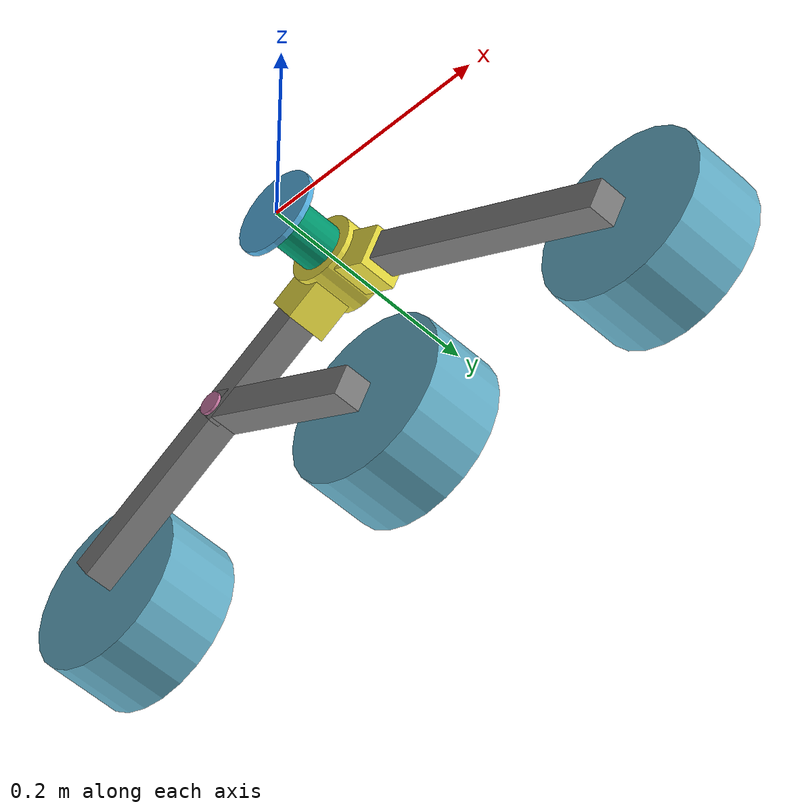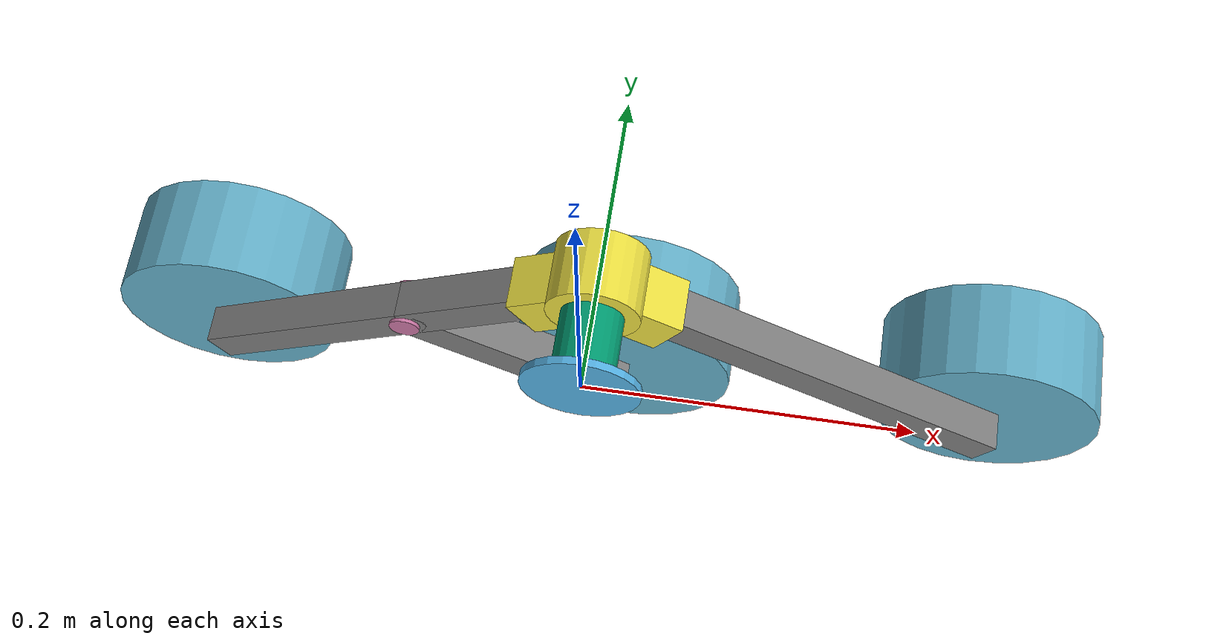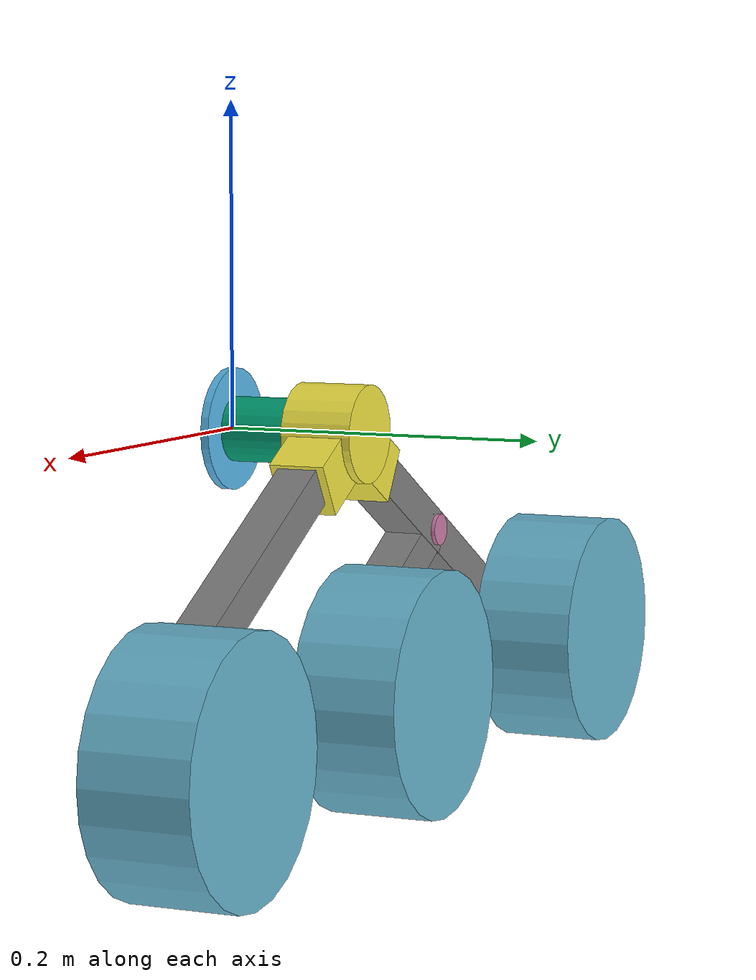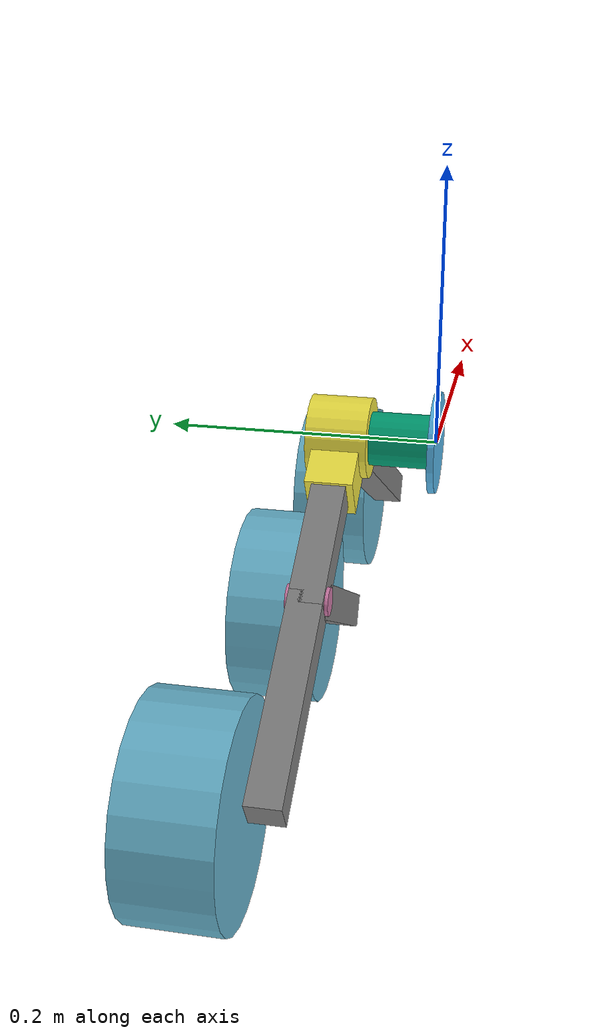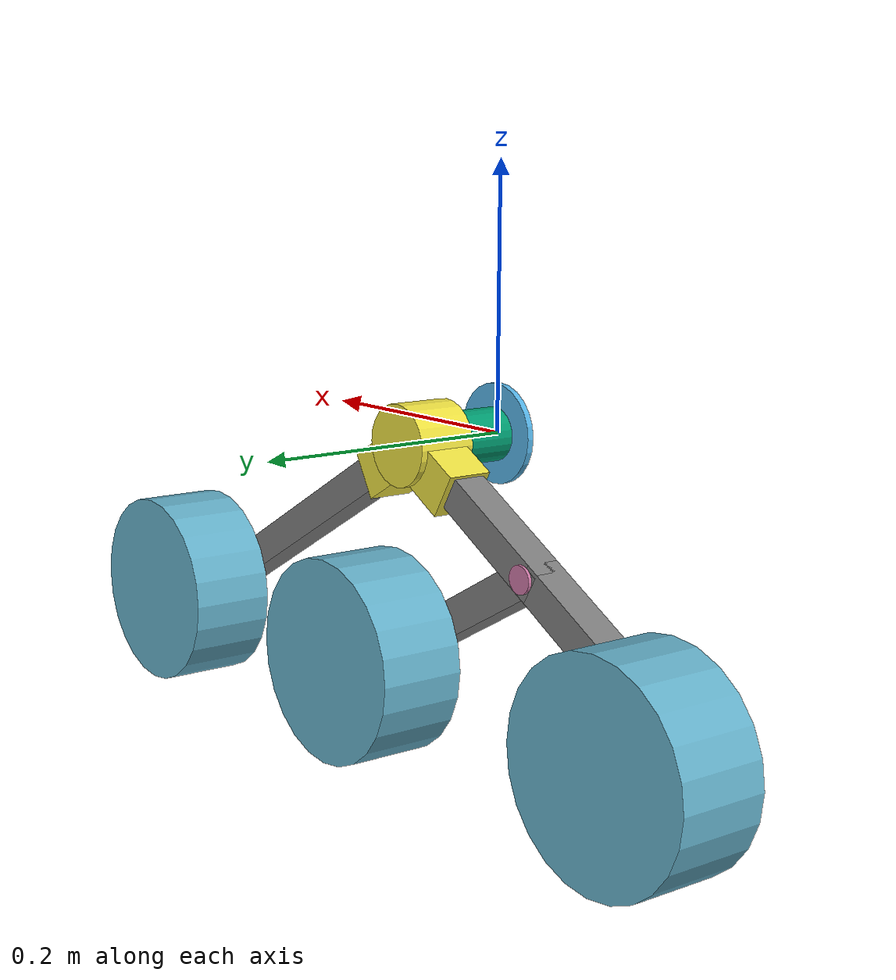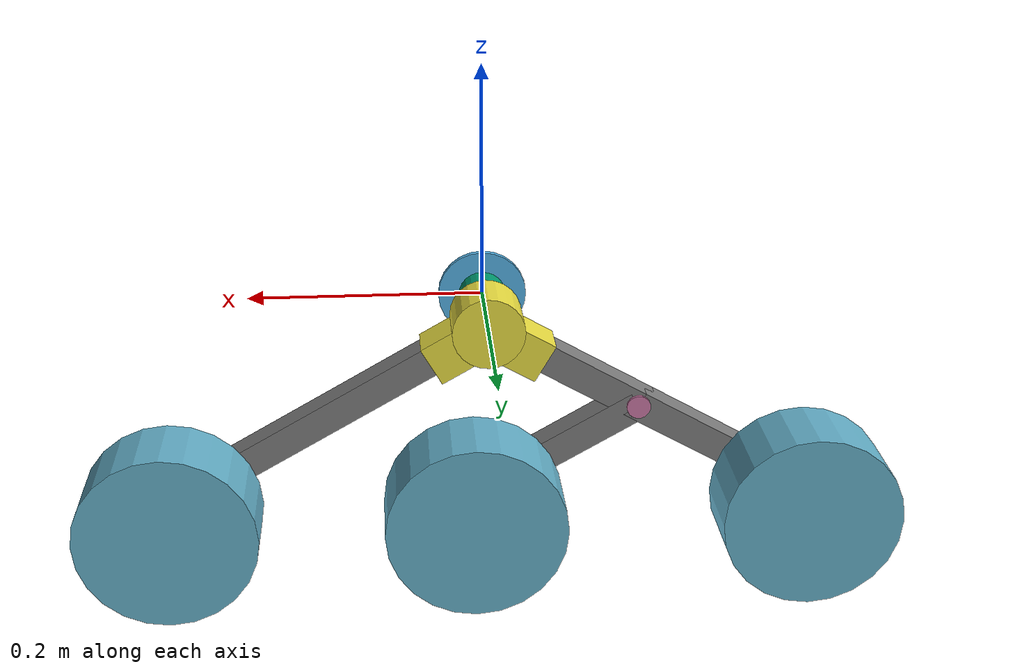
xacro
<?xml version="1.0"?>

<robot xmlns:xacro="http://www.ros.org/wiki/xacro" name="minesweeper_left">

  <link name="left_base_link"/>

  <xacro:property name="circular_plate_length" value="0.005"/>
  <xacro:property name="circular_plate_radius" value="0.0375"/>

  <link name = "circular_plate_link">
    <visual>
        <geometry>
            <cylinder length="${circular_plate_length}" radius="${circular_plate_radius}"/>
        </geometry>
        <origin xyz = "0 0 0" rpy="${pi/2} 0 0"/>
    </visual>
    <collision>
        <geometry>
            <cylinder length="${circular_plate_length}" radius="${circular_plate_radius}"/>
        </geometry>
        <origin xyz = "0 0 0" rpy="${pi/2} 0 0"/>
    </collision>
    <inertial>
      <origin xyz="0 0 0" rpy="${pi/2} 0 0"/> <!-- Position and orientation of the inertia frame relative to the link frame -->
      <mass value="0.01"/> <!-- Mass of the link in kilograms -->
      <inertia ixx="${1/12*0.01*(3*circular_plate_radius**2 + circular_plate_length**2)}" ixy="0" ixz="0" iyy="${1/12*0.01*(3*circular_plate_radius**2 + circular_plate_length**2)}" iyz="0" izz="${1/2*0.01*circular_plate_radius**2}"/> <!-- Inertia tensor components in kg*m^2 -->

    </inertial>
  </link>

  <joint name="circular_plate_joint" type="fixed">
    <parent link="left_base_link"/>
    <child link="circular_plate_link"/>
  </joint>

  <xacro:property name="bracket_length" value="0.045"/>
  <xacro:property name="bracket_radius" value="0.02"/>

  <link name="bracket_link">
    <visual>
        <geometry>
            <cylinder length = "${bracket_length}" radius="${bracket_radius}"/>
        </geometry>
        <origin xyz = "0 0 0" rpy="0 0 0"/>
    </visual>
    <collision>
        <geometry>
            <cylinder length = "${bracket_length}" radius="${bracket_radius}"/>
        </geometry>
        <origin xyz = "0 0 0" rpy="0 0 0"/>
    </collision>
    <inertial>
      <origin xyz="0 0 0" rpy="0 0 0"/> <!-- Position and orientation of the inertia frame relative to the link frame -->
      <mass value="0.03"/> <!-- Mass of the link in kilograms -->
      <inertia ixx="${1/12*0.01*(3*bracket_radius**2 + bracket_length**2)}" ixy="0" ixz="0" iyy="${1/12*0.01*(3*bracket_radius**2 + bracket_length**2)}" iyz="0" izz="${1/2*0.01*bracket_radius**2}"/> <!-- Inertia tensor components in kg*m^2 -->
    </inertial>
  </link>

  <joint name="bracket_joint" type="fixed">
    <parent link ="left_base_link"/>
    <child link ="bracket_link"/>
    <origin xyz="0 ${circular_plate_length/2 + bracket_length/2} 0" rpy="${pi/2} 0 0"/>
  </joint>

  <xacro:property name="rot_bracket_length" value="0.045"/>
  <xacro:property name="rot_bracket_radius" value="0.03"/>
  <xacro:property name="leg_x" value="0.05"/>
  <xacro:property name="leg_y" value="0.035"/>
  <xacro:property name="leg_z" value="0.035"/>

  <link name = "rot_bracket_link">
    <visual>
        <geometry>
            <cylinder length = "${rot_bracket_length}" radius="${rot_bracket_radius}"/>
        </geometry>
        <origin xyz = "0 0 0" rpy="0 0 0"/>
    </visual>
    <collision>
        <geometry>
            <cylinder length = "${rot_bracket_length}" radius="${rot_bracket_radius}"/>
        </geometry>
        <origin xyz = "0 0 0" rpy="0 0 0"/>
    </collision>
    <inertial>
      <origin xyz="0 0 0" rpy="0 0 0"/> <!-- Position and orientation of the inertia frame relative to the link frame -->
      <mass value="0.07"/> <!-- Mass of the link in kilograms -->
      <inertia ixx="${1/12*0.07*(3*rot_bracket_radius**2 + rot_bracket_length**2)}" ixy="0" ixz="0" iyy="${1/12*0.07*(3*rot_bracket_radius**2 + rot_bracket_length**2)}" iyz="0" izz="${1/2*0.07*rot_bracket_radius**2}"/> <!-- Inertia tensor components in kg*m^2 -->
    </inertial>

    <visual>
      <geometry>
        <box size = "${leg_x} ${leg_y} ${leg_z}"/>
      </geometry>
      <origin xyz = "${leg_x/2} ${-leg_y/2} 0" rpy="0 0 ${-pi/6}"/>
    </visual>
    <collision>
      <geometry>
        <box size = "${leg_x} ${leg_y} ${leg_z}"/>
      </geometry>
      <origin xyz = "${leg_x/2} ${-leg_y/2} 0" rpy="0 0 ${-pi/6}"/>
    </collision>

    <visual>
      <geometry>
        <box size = "${leg_x} ${leg_y} ${leg_z}"/>
      </geometry>
      <origin xyz = "${-leg_x/2} ${-leg_y/2} 0" rpy="0 0 ${pi/6}"/>
    </visual>
    <collision>
      <geometry>
        <box size = "${leg_x} ${leg_y} ${leg_z}"/>
      </geometry>
      <origin xyz = "${-leg_x/2} ${-leg_y/2} 0" rpy="0 0 ${pi/6}"/>
    </collision>
  </link>

  <joint name="rot_bracket_joint" type="fixed">
    <parent link ="bracket_link"/>
    <child link ="rot_bracket_link"/>
    <origin xyz= "0 0 ${-rot_bracket_length/2 - bracket_length/2}" rpy="0 0 0"/>
  </joint>

  <xacro:property name="metal_leg_x" value="0.25"/>
  <xacro:property name="metal_leg_y" value="0.025"/>
  <xacro:property name="metal_leg_z" value="0.025"/>

  <link name="metal_leg_link">
    <visual>
      <geometry>
        <box size = "${metal_leg_x} ${metal_leg_y} ${metal_leg_z}"/>
      </geometry>
      <origin xyz = "0 0 0" rpy="0 0 0"/>
      <material name="steel">
        <color rgba="0.5 0.5 0.5 1"/> <!-- Adjust the RGBA values for your desired color and opacity -->
      </material>
    </visual>
    <collision>
      <geometry>
        <box size = "${metal_leg_x} ${metal_leg_y} ${metal_leg_z}"/>
      </geometry>
      <origin xyz = "0 0 0" rpy="0 0 0"/>
    </collision>
    <inertial>
      <origin xyz="0 0 0" rpy="0 0 0"/> <!-- Position and orientation of the inertia frame relative to the link frame -->
      <mass value="1.4"/> <!-- Mass of the link in kilograms -->
      <inertia ixx="${1/12*1.4*(metal_leg_y**2+metal_leg_z**2)}" ixy="0" ixz="0" iyy="${1/12*1.4*(metal_leg_x**2+metal_leg_z**2)}" iyz="0" izz="${1/12*1.4*(metal_leg_y**2+metal_leg_x**2)}"/> <!-- Inertia tensor components in kg*m^2 -->
    </inertial>
  </link>

  <joint name = "metal_leg_joint" type="fixed">
    <parent link = "rot_bracket_link"/>
    <child link = "metal_leg_link"/>
    <origin xyz = "${(metal_leg_x/2 + rot_bracket_radius + 0.025) *0.866 } ${-1*(metal_leg_x/2 + rot_bracket_radius + 0.025) *0.5} 0" rpy = "0 0 ${-pi/6}"/>
  </joint>

  <xacro:property name="metal_leg_mirror_x" value="0.1"/>

  <link name="metal_leg_mirror_link">
    <visual>
      <geometry>
        <box size = "${metal_leg_mirror_x} ${metal_leg_y} ${metal_leg_z}"/>
      </geometry>
      <origin xyz = "0 0 0" rpy="0 0 0"/>
      <material name="steel">
        <color rgba="0.5 0.5 0.5 1"/> <!-- Adjust the RGBA values for your desired color and opacity -->
      </material>
    </visual>
    <collision>
      <geometry>
        <box size = "${metal_leg_mirror_x} ${metal_leg_y} ${metal_leg_z}"/>
      </geometry>
      <origin xyz = "0 0 0" rpy="0 0 0"/>
    </collision>
    <inertial>
      <origin xyz="0 0 0" rpy="0 0 0"/> <!-- Position and orientation of the inertia frame relative to the link frame -->
      <mass value="0.1"/> <!-- Mass of the link in kilograms -->
      <inertia ixx="${1/12*0.1*(metal_leg_y**2+metal_leg_z**2)}" ixy="0" ixz="0" iyy="${1/12*0.1*(metal_leg_mirror_x**2+metal_leg_z**2)}" iyz="0" izz="${1/12*0.1*(metal_leg_y**2+metal_leg_mirror_x**2)}"/> <!-- Inertia tensor components in kg*m^2 -->
    </inertial>
  </link>

  <joint name = "metal_leg_mirror_joint" type="fixed">
    <parent link = "rot_bracket_link"/>
    <child link = "metal_leg_mirror_link"/>
    <origin xyz = "${-1*(metal_leg_mirror_x/2  + rot_bracket_radius + 0.025) *0.866 } ${-1*(metal_leg_mirror_x/2 + rot_bracket_radius+ 0.025) *0.5} 0" rpy = "0 0 ${pi/6}"/>
  </joint>

  <xacro:property name="bjw_o_radius" value="0.01"/>
  <xacro:property name="bjw_o_length" value="0.03"/>

  <link name="bjw_link">
    <visual>
      <geometry>
        <cylinder radius="${bjw_o_radius}" length="${bjw_o_length}"/>
      </geometry>
      <origin xyz="0 0 0" rpy="0 0 0"/>
    </visual>
    <collision>
      <geometry>
        <cylinder radius="${bjw_o_radius}" length="${bjw_o_length}"/>
      </geometry>
      <origin xyz="0 0 0" rpy="0 0 0"/>
    </collision>
    <inertial>
      <origin xyz="0 0 0" rpy="0 0 0"/> <!-- Position and orientation of the inertia frame relative to the link frame -->
      <mass value="0.03"/> <!-- Mass of the link in kilograms -->
      <inertia ixx="${1/12*0.03*(3*bjw_o_radius**2 + bjw_o_length**2)}" ixy="0" ixz="0" iyy="${1/12*0.03*(3*bjw_o_radius**2 + bjw_o_length**2)}" iyz="0" izz="${1/2*0.03*bjw_o_radius**2}"/> <!-- Inertia tensor components in kg*m^2 -->
    </inertial>
  </link>

  <joint name="bjw_joint" type="revolute">
    <parent link="metal_leg_mirror_link"/>
    <child link="bjw_link"/>
    <origin xyz ="${-1*(metal_leg_mirror_x/2-bjw_o_radius)} 0 0" rpy="0 0 0"/>
    <limit lower="-2" upper="0" effort="10" velocity="3"/>
    <axis xyz = "0 0 1"/>
  </joint>

  <link name = "short_leg_link">
    <visual>
      <geometry>
        <box size="${metal_leg_x - metal_leg_mirror_x + bjw_o_radius} ${metal_leg_y} ${metal_leg_z}" rpy="0 0 0"/>
      </geometry>
      <material name="steel">
        <color rgba="0.5 0.5 0.5 1"/> <!-- Adjust the RGBA values for your desired color and opacity -->
      </material>
      <origin xyz="0 0 0" rpy="0 0 0"/>
    </visual>
    <collision>
      <geometry>
        <box size="${metal_leg_x - metal_leg_mirror_x + bjw_o_radius} ${metal_leg_y} ${metal_leg_z}" rpy="0 0 0"/>
      </geometry>
      <origin xyz="0 0 0" rpy="0 0 0"/>
    </collision>
    <inertial>
      <origin xyz="0 0 0" rpy="0 0 0"/> <!-- Position and orientation of the inertia frame relative to the link frame -->
      <mass value="0.05"/> <!-- Mass of the link in kilograms -->
      <inertia ixx="${1/12*0.05*(metal_leg_y**2 + metal_leg_z**2)}" ixy="0" ixz="0" iyy="${1/12*0.05*((metal_leg_x - metal_leg_mirror_x + bjw_o_radius)**2 + metal_leg_z**2)}" iyz="0" izz="${1/12*0.05*((metal_leg_x - metal_leg_mirror_x + bjw_o_radius)**2 + metal_leg_y**2)}"/> <!-- Inertia tensor components in kg*m^2 -->
    </inertial>
  </link>

  <joint name="short_leg_joint" type="fixed">
    <parent link="bjw_link"/>
    <child link="short_leg_link"/>
    <origin xyz="${-1*(metal_leg_x - metal_leg_mirror_x + bjw_o_radius)/2} 0 0" rpy="0 0 0"/>
  </joint>

    <link name = "short_leg_two_link">
    <visual>
      <geometry>
        <box size="${metal_leg_x - metal_leg_mirror_x + bjw_o_radius} ${metal_leg_y} ${metal_leg_z}" rpy="0 0 0"/>
      </geometry>
      <origin xyz="${(metal_leg_x - metal_leg_mirror_x + bjw_o_radius)/2} 0 0" rpy="0 0 0"/>
      <material name="steel">
        <color rgba="0.5 0.5 0.5 1"/> <!-- Adjust the RGBA values for your desired color and opacity -->
      </material>
    </visual>
    <collision>
      <geometry>
        <box size="${metal_leg_x - metal_leg_mirror_x + bjw_o_radius} ${metal_leg_y} ${metal_leg_z}" rpy="0 0 0"/>
      </geometry>
      <origin xyz="${(metal_leg_x - metal_leg_mirror_x + bjw_o_radius)/2} 0 0" rpy="0 0 0"/>
    </collision>
    <inertial>
      <origin xyz="${(metal_leg_x - metal_leg_mirror_x + bjw_o_radius)/2} 0 0" rpy="0 0 0"/> <!-- Position and orientation of the inertia frame relative to the link frame -->
      <mass value="0.05"/> <!-- Mass of the link in kilograms -->
      <inertia ixx="${1/12*0.05*(metal_leg_z**2 + metal_leg_y**2)}" ixy="0" ixz="0" iyy="${1/12*0.05*(metal_leg_z**2 + (metal_leg_x - metal_leg_mirror_x + bjw_o_radius)**2)}" iyz="0" izz="${1/12*0.05*(metal_leg_y**2 + (metal_leg_x - metal_leg_mirror_x + bjw_o_radius)**2)}"/> <!-- Inertia tensor components in kg*m^2 -->
    </inertial>
  </link>

  <joint name="short_leg_two_joint" type="fixed">
    <parent link="bjw_link"/>
    <child link="short_leg_two_link"/>
    <origin xyz="0 0 0" rpy="0 0 ${-pi/3}"/>
  </joint>

  <xacro:property name="wheel_length" value="0.065"/>
  <xacro:property name="wheel_radius" value="0.075"/>

  <link name="wheel_one">
    <visual>
      <geometry>
        <cylinder length="${wheel_length}" radius="${wheel_radius}"/>
      </geometry>
      <origin xyz="0 0 0" rpy="0 0 0"/>
      <material name="steel">
        <color rgba="0.4 0.7 0.8 1"/> <!-- Adjust the RGBA values for your desired color and opacity -->
      </material>
    </visual>
    <collision>
      <geometry>
        <cylinder length="${wheel_length}" radius="${wheel_radius}"/>
      </geometry>
      <origin xyz="0 0 0" rpy="0 0 0"/>
    </collision>
    <inertial>
      <origin xyz="0 0 0" rpy="0 0 0"/> <!-- Position and orientation of the inertia frame relative to the link frame -->
      <mass value="0.05"/> <!-- Mass of the link in kilograms -->
      <inertia ixx="${1/12*0.5*(3*wheel_radius**2 + wheel_length**2)}" ixy="0" ixz="0" iyy="${1/12*0.5*(3*wheel_radius**2 + wheel_length**2)}" iyz="0" izz="${1/2*0.5*wheel_radius**2}"/> <!-- Inertia tensor components in kg*m^2 -->
    </inertial>
  </link>

  <joint name="wheel_one_joint" type="continuous">
    <parent link="metal_leg_link"/>
    <child link="wheel_one"/>
    <origin xyz="${metal_leg_x/2} 0 ${-1*(metal_leg_z/2+wheel_length/2)}" rpy="0 0 0"/>
    <axis xyz = "0 0 1"/>
  </joint>

  <link name="wheel_two">
    <visual>
      <geometry>
        <cylinder length="${wheel_length}" radius="${wheel_radius}"/>
      </geometry>
      <origin xyz="0 0 0" rpy="0 0 0"/>
      <material name="steel">
        <color rgba="0.4 0.7 0.8 1"/> <!-- Adjust the RGBA values for your desired color and opacity -->
      </material>
    </visual>
    <collision>
      <geometry>
        <cylinder length="${wheel_length}" radius="${wheel_radius}"/>
      </geometry>
      <origin xyz="0 0 0" rpy="0 0 0"/>
    </collision>
    <inertial>
      <origin xyz="0 0 0" rpy="0 0 0"/> <!-- Position and orientation of the inertia frame relative to the link frame -->
      <mass value="0.05"/> <!-- Mass of the link in kilograms -->
      <inertia ixx="${1/12*0.5*(3*wheel_radius**2 + wheel_length**2)}" ixy="0" ixz="0" iyy="${1/12*0.5*(3*wheel_radius**2 + wheel_length**2)}" iyz="0" izz="${1/2*0.5*wheel_radius**2}"/> <!-- Inertia tensor components in kg*m^2 -->
    </inertial>
  </link>

  <joint name="wheel_two_joint" type="continuous">
    <parent link="short_leg_two_link"/>
    <child link="wheel_two"/>
    <origin xyz="${(metal_leg_x - metal_leg_mirror_x + bjw_o_radius)} 0 ${-1*(metal_leg_z/2+wheel_length/2)}" rpy="0 0 0"/>
    <axis xyz="0 0 1"/>
  </joint>

  <link name="wheel_three">
    <visual>
      <geometry>
        <cylinder length="${wheel_length}" radius="${wheel_radius}"/>
      </geometry>
      <origin xyz="0 0 0" rpy="0 0 0"/>
      <material name="steel">
        <color rgba="0.4 0.7 0.8 1"/> <!-- Adjust the RGBA values for your desired color and opacity -->
      </material>
    </visual>
    <collision>
      <geometry>
        <cylinder length="${wheel_length}" radius="${wheel_radius}"/>
      </geometry>
      <origin xyz="0 0 0" rpy="0 0 0"/>
    </collision>
    <inertial>
      <origin xyz="0 0 0" rpy="0 0 0"/> <!-- Position and orientation of the inertia frame relative to the link frame -->
      <mass value="0.05"/> <!-- Mass of the link in kilograms -->
      <inertia ixx="${1/12*0.5*(3*wheel_radius**2 + wheel_length**2)}" ixy="0" ixz="0" iyy="${1/12*0.5*(3*wheel_radius**2 + wheel_length**2)}" iyz="0" izz="${1/2*0.5*wheel_radius**2}"/> <!-- Inertia tensor components in kg*m^2 -->
    </inertial>
  </link>

  <joint name="wheel_three_joint" type="continuous">
    <parent link="short_leg_link"/>
    <child link="wheel_three"/>
    <origin xyz="${-1*(metal_leg_x - metal_leg_mirror_x + bjw_o_radius)/2} 0 ${-1*(metal_leg_z/2+wheel_length/2)}" rpy="0 0 0"/>
    <axis xyz = "0 0 1"/>
  </joint>

</robot>
